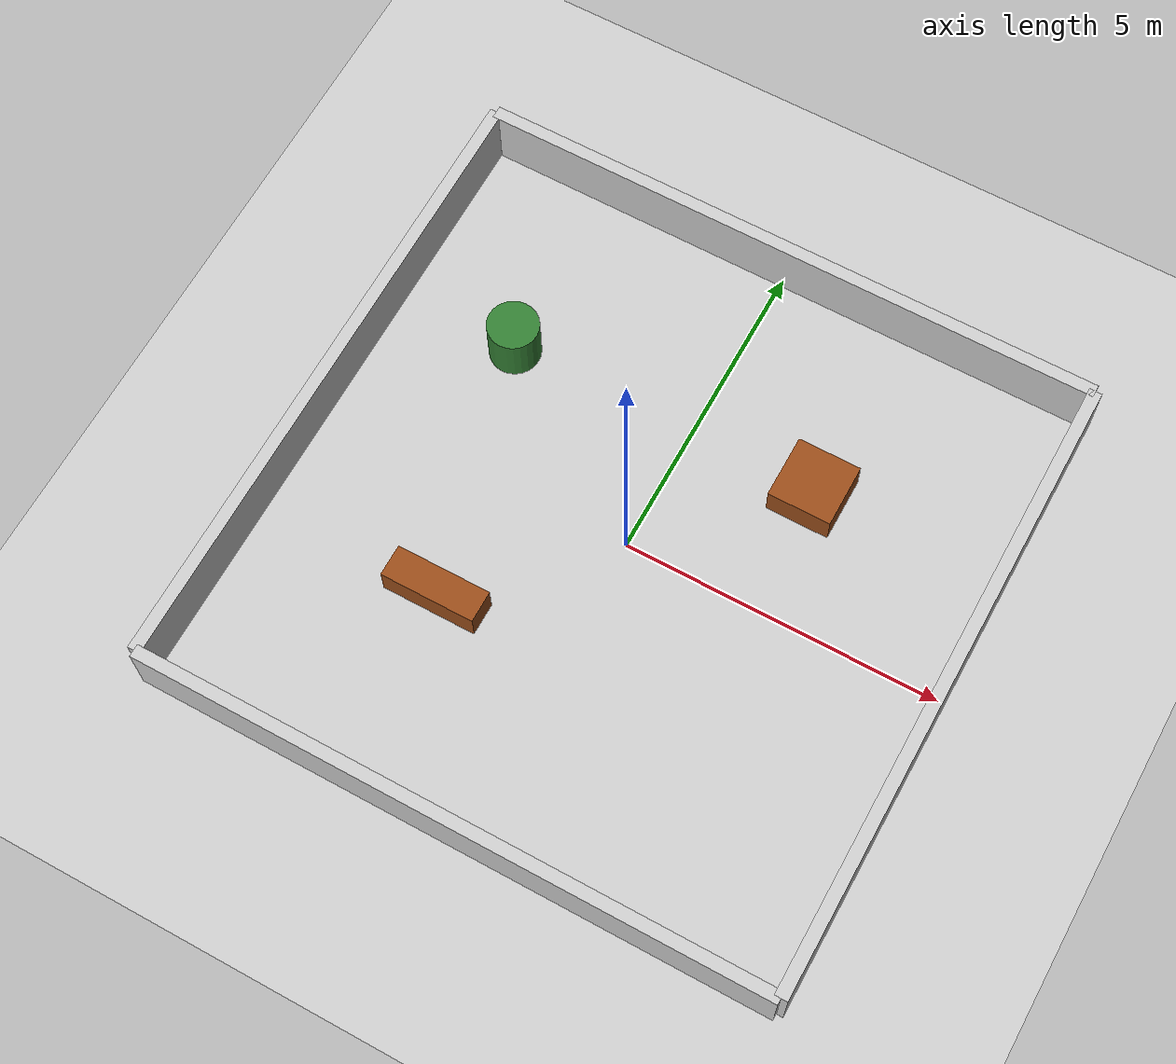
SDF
<?xml version="1.0" ?>
<sdf version="1.6">
  <world name="simple_room">
    <!-- Physics -->
    <physics type="ode">
      <max_step_size>0.001</max_step_size>
      <real_time_factor>1</real_time_factor>
      <real_time_update_rate>1000</real_time_update_rate>
    </physics>

    <!-- Lighting -->
    <include>
      <uri>model://sun</uri>
    </include>

    <!-- Ground -->
    <include>
      <uri>model://ground_plane</uri>
    </include>

    <!-- Walls - Simple rectangular room -->
    <model name="wall_north">
      <static>true</static>
      <pose>0 5 0.5 0 0 0</pose>
      <link name="link">
        <collision name="collision">
          <geometry><box><size>10 0.2 1</size></box></geometry>
        </collision>
        <visual name="visual">
          <geometry><box><size>10 0.2 1</size></box></geometry>
          <material><ambient>0.8 0.8 0.8 1</ambient></material>
        </visual>
      </link>
    </model>

    <model name="wall_south">
      <static>true</static>
      <pose>0 -5 0.5 0 0 0</pose>
      <link name="link">
        <collision name="collision">
          <geometry><box><size>10 0.2 1</size></box></geometry>
        </collision>
        <visual name="visual">
          <geometry><box><size>10 0.2 1</size></box></geometry>
          <material><ambient>0.8 0.8 0.8 1</ambient></material>
        </visual>
      </link>
    </model>

    <model name="wall_east">
      <static>true</static>
      <pose>5 0 0.5 0 0 0</pose>
      <link name="link">
        <collision name="collision">
          <geometry><box><size>0.2 10 1</size></box></geometry>
        </collision>
        <visual name="visual">
          <geometry><box><size>0.2 10 1</size></box></geometry>
          <material><ambient>0.8 0.8 0.8 1</ambient></material>
        </visual>
      </link>
    </model>

    <model name="wall_west">
      <static>true</static>
      <pose>-5 0 0.5 0 0 0</pose>
      <link name="link">
        <collision name="collision">
          <geometry><box><size>0.2 10 1</size></box></geometry>
        </collision>
        <visual name="visual">
          <geometry><box><size>0.2 10 1</size></box></geometry>
          <material><ambient>0.8 0.8 0.8 1</ambient></material>
        </visual>
      </link>
    </model>

    <!-- Obstacles -->
    <model name="obstacle_1">
      <static>true</static>
      <pose>2 2 0.25 0 0 0</pose>
      <link name="link">
        <collision name="collision">
          <geometry><box><size>1 1 0.5</size></box></geometry>
        </collision>
        <visual name="visual">
          <geometry><box><size>1 1 0.5</size></box></geometry>
          <material><ambient>0.6 0.3 0.1 1</ambient></material>
        </visual>
      </link>
    </model>

    <model name="obstacle_2">
      <static>true</static>
      <pose>-2 -2 0.25 0 0 0</pose>
      <link name="link">
        <collision name="collision">
          <geometry><box><size>1.5 0.5 0.5</size></box></geometry>
        </collision>
        <visual name="visual">
          <geometry><box><size>1.5 0.5 0.5</size></box></geometry>
          <material><ambient>0.6 0.3 0.1 1</ambient></material>
        </visual>
      </link>
    </model>

    <model name="obstacle_3">
      <static>true</static>
      <pose>-3 2 0.4 0 0 0</pose>
      <link name="link">
        <collision name="collision">
          <geometry><cylinder><radius>0.4</radius><length>0.8</length></cylinder></geometry>
        </collision>
        <visual name="visual">
          <geometry><cylinder><radius>0.4</radius><length>0.8</length></cylinder></geometry>
          <material><ambient>0.2 0.5 0.2 1</ambient></material>
        </visual>
      </link>
    </model>

    <!-- Camera -->
    <gui fullscreen='0'>
      <camera name='user_camera'>
        <pose>0 -12 8 0 0.5 1.57</pose>
        <view_controller>orbit</view_controller>
      </camera>
    </gui>
  </world>
</sdf>
